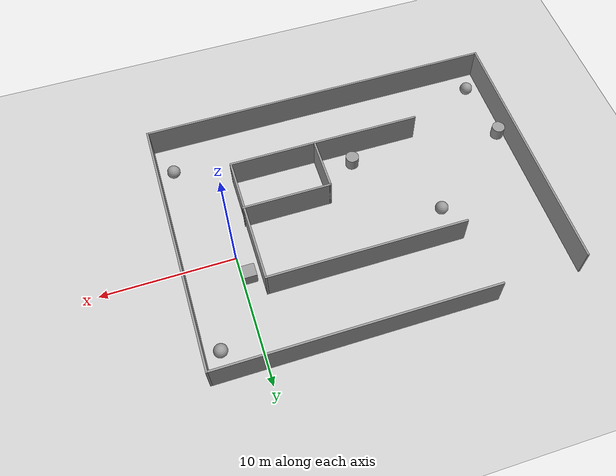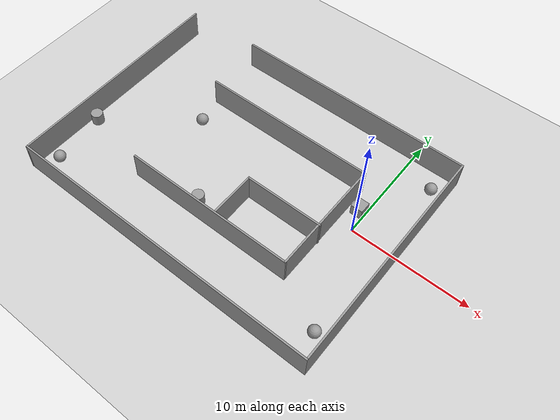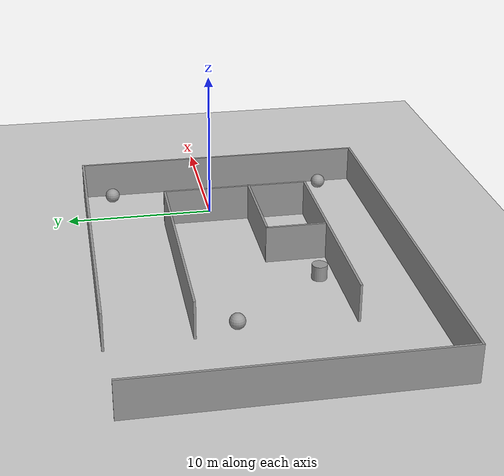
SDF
<sdf version="1.7">
 <world name="default">
  <light name="sun" type="directional">
   <pose>0 0 10 0 -0 0</pose>
   <diffuse>0.8 0.8 0.8 1</diffuse>
   <specular>0.2 0.2 0.2 1</specular>
   <attenuation>
    <range>1000</range>
    <constant>0.9</constant>
    <linear>0.01</linear>
    <quadratic>0.001</quadratic>
   </attenuation>
   <direction>-0.5 0.1 -0.9</direction>
   <spot><inner_angle>0</inner_angle><outer_angle>0</outer_angle><falloff>0</falloff></spot>
  </light>
  <model name="ground_plane">
   <static>1</static>
   <link name="link">
    <collision name="collision">
     <geometry><plane><normal>0 0 1</normal><size>100 100</size></plane></geometry>
     <surface>
      <contact><collide_bitmask>65535</collide_bitmask></contact>
      <friction><ode><mu>100</mu><mu2>50</mu2></ode></friction>
     </surface>
    </collision>
    <visual name="visual">
     <cast_shadows>0</cast_shadows>
     <geometry><plane><normal>0 0 1</normal><size>100 100</size></plane></geometry>
     <material>
      <script><uri>file://media/materials/scripts/gazebo.material</uri><name>Gazebo/Grey</name></script>
     </material>
    </visual>
   </link>
  </model>
  <gravity>0 0 -9.8</gravity>
  <magnetic_field>6e-06 2.3e-05 -4.2e-05</magnetic_field>
  <atmosphere type="adiabatic"/>
  <physics type="ode">
   <max_step_size>0.001</max_step_size>
   <real_time_factor>1</real_time_factor>
   <real_time_update_rate>1000</real_time_update_rate>
  </physics>
  <scene><ambient>0.4 0.4 0.4 1</ambient><background>0.7 0.7 0.7 1</background><shadows>1</shadows></scene>
  <audio><device>default</device></audio>
  <spherical_coordinates>
   <surface_model>EARTH_WGS84</surface_model>
   <latitude_deg>0</latitude_deg>
   <longitude_deg>0</longitude_deg>
   <elevation>0</elevation>
   <heading_deg>0</heading_deg>
  </spherical_coordinates>
  <model name="map">
   <pose>-9.63942 -1.25494 0 0 -0 0</pose>
   <link name="Wall_10">
    <collision name="Wall_10_Collision">
     <geometry><box><size>20.75 0.15 2.5</size></box></geometry>
     <pose>0 0 1.25 0 -0 0</pose>
    </collision>
    <visual name="Wall_10_Visual">
     <pose>0 0 1.25 0 -0 0</pose>
     <geometry><box><size>20.75 0.15 2.5</size></box></geometry>
     <material>
      <script><uri>file://media/materials/scripts/gazebo.material</uri><name>Gazebo/Grey</name></script>
      <ambient>1 1 1 1</ambient>
     </material>
     <meta><layer>0</layer></meta>
    </visual>
    <pose>3.25 9.925 0 0 -0 3.14159</pose>
   </link>
   <link name="Wall_12">
    <collision name="Wall_12_Collision">
     <geometry><box><size>15 0.15 2.5</size></box></geometry>
     <pose>0 0 1.25 0 -0 0</pose>
    </collision>
    <visual name="Wall_12_Visual">
     <pose>0 0 1.25 0 -0 0</pose>
     <geometry><box><size>15 0.15 2.5</size></box></geometry>
     <material>
      <script><uri>file://media/materials/scripts/gazebo.material</uri><name>Gazebo/Grey</name></script>
      <ambient>1 1 1 1</ambient>
     </material>
     <meta><layer>0</layer></meta>
    </visual>
    <pose>0.76054 4.60389 0 0 -0 0</pose>
   </link>
   <link name="Wall_13">
    <collision name="Wall_13_Collision">
     <geometry><box><size>10 0.15 2.5</size></box></geometry>
     <pose>0 0 1.25 0 -0 0</pose>
    </collision>
    <visual name="Wall_13_Visual">
     <pose>0 0 1.25 0 -0 0</pose>
     <geometry><box><size>10 0.15 2.5</size></box></geometry>
     <material>
      <script><uri>file://media/materials/scripts/gazebo.material</uri><name>Gazebo/Grey</name></script>
      <ambient>1 1 1 1</ambient>
     </material>
     <meta><layer>0</layer></meta>
    </visual>
    <pose>8.18554 -0.321107 0 0 -0 -1.5708</pose>
   </link>
   <link name="Wall_14">
    <collision name="Wall_14_Collision">
     <geometry><box><size>14.75 0.15 2.5</size></box></geometry>
     <pose>0 0 1.25 0 -0 0</pose>
    </collision>
    <visual name="Wall_14_Visual">
     <pose>0 0 1.25 0 -0 0</pose>
     <geometry><box><size>14.75 0.15 2.5</size></box></geometry>
     <material>
      <script><uri>file://media/materials/scripts/gazebo.material</uri><name>Gazebo/Grey</name></script>
      <ambient>1 1 1 1</ambient>
     </material>
     <meta><layer>0</layer></meta>
    </visual>
    <pose>0.88554 -5.24611 0 0 -0 3.14159</pose>
   </link>
   <link name="Wall_16">
    <collision name="Wall_16_Collision">
     <geometry><box><size>4 0.15 2.5</size></box></geometry>
     <pose>0 0 1.25 0 -0 0</pose>
    </collision>
    <visual name="Wall_16_Visual">
     <pose>0 0 1.25 0 -0 0</pose>
     <geometry><box><size>4 0.15 2.5</size></box></geometry>
     <material>
      <script><uri>file://media/materials/scripts/gazebo.material</uri><name>Gazebo/Grey</name></script>
      <ambient>1 1 1 1</ambient>
     </material>
     <meta><layer>0</layer></meta>
    </visual>
    <pose>1.66332 -3.19461 0 0 -0 1.5708</pose>
   </link>
   <link name="Wall_17">
    <collision name="Wall_17_Collision">
     <geometry><box><size>6.75 0.15 2.5</size></box></geometry>
     <pose>0 0 1.25 0 -0 0</pose>
    </collision>
    <visual name="Wall_17_Visual">
     <pose>0 0 1.25 0 -0 0</pose>
     <geometry><box><size>6.75 0.15 2.5</size></box></geometry>
     <material>
      <script><uri>file://media/materials/scripts/gazebo.material</uri><name>Gazebo/Grey</name></script>
      <ambient>1 1 1 1</ambient>
     </material>
     <meta><layer>0</layer></meta>
    </visual>
    <pose>4.96332 -1.26961 0 0 -0 0</pose>
   </link>
   <link name="Wall_7">
    <collision name="Wall_7_Collision">
     <geometry><box><size>19.75 0.15 2.5</size></box></geometry>
     <pose>0 0 1.25 0 -0 0</pose>
    </collision>
    <visual name="Wall_7_Visual">
     <pose>0 0 1.25 0 -0 0</pose>
     <geometry><box><size>19.75 0.15 2.5</size></box></geometry>
     <material>
      <script><uri>file://media/materials/scripts/gazebo.material</uri><name>Gazebo/Grey</name></script>
      <ambient>1 1 1 1</ambient>
     </material>
     <meta><layer>0</layer></meta>
    </visual>
    <pose>-13.55 -0.125 0 0 -0 -1.5708</pose>
   </link>
   <link name="Wall_8">
    <collision name="Wall_8_Collision">
     <geometry><box><size>27.25 0.15 2.5</size></box></geometry>
     <pose>0 0 1.25 0 -0 0</pose>
    </collision>
    <visual name="Wall_8_Visual">
     <pose>0 0 1.25 0 -0 0</pose>
     <geometry><box><size>27.25 0.15 2.5</size></box></geometry>
     <material>
      <script><uri>file://media/materials/scripts/gazebo.material</uri><name>Gazebo/Grey</name></script>
      <ambient>1 1 1 1</ambient>
     </material>
     <meta><layer>0</layer></meta>
    </visual>
    <pose>0 -9.925 0 0 -0 0</pose>
   </link>
   <link name="Wall_9">
    <collision name="Wall_9_Collision">
     <geometry><box><size>20 0.15 2.5</size></box></geometry>
     <pose>0 0 1.25 0 -0 0</pose>
    </collision>
    <visual name="Wall_9_Visual">
     <pose>0 0 1.25 0 -0 0</pose>
     <geometry><box><size>20 0.15 2.5</size></box></geometry>
     <material>
      <script><uri>file://media/materials/scripts/gazebo.material</uri><name>Gazebo/Grey</name></script>
      <ambient>1 1 1 1</ambient>
     </material>
     <meta><layer>0</layer></meta>
    </visual>
    <pose>13.55 0 0 0 -0 1.5708</pose>
   </link>
   <static>1</static>
  </model>
  <model name="unit_box">
   <pose>-0.544829 1.72367 0.499995 0 1e-05 0</pose>
   <link name="link">
    <inertial>
     <mass>1</mass>
     <inertia>
      <ixx>0.166667</ixx>
      <ixy>0</ixy>
      <ixz>0</ixz>
      <iyy>0.166667</iyy>
      <iyz>0</iyz>
      <izz>0.166667</izz>
     </inertia>
    </inertial>
    <collision name="collision"><geometry><box><size>1 1 1</size></box></geometry></collision>
    <visual name="visual">
     <geometry><box><size>1 1 1</size></box></geometry>
     <material>
      <script><name>Gazebo/Grey</name><uri>file://media/materials/scripts/gazebo.material</uri></script>
     </material>
    </visual>
   </link>
  </model>
  <model name="unit_sphere">
   <pose>-15.6559 0.741991 0.5 0 -0 0</pose>
   <link name="link">
    <inertial>
     <mass>1</mass>
     <inertia><ixx>0.1</ixx><ixy>0</ixy><ixz>0</ixz><iyy>0.1</iyy><iyz>0</iyz><izz>0.1</izz></inertia>
    </inertial>
    <collision name="collision"><geometry><sphere><radius>0.5</radius></sphere></geometry></collision>
    <visual name="visual">
     <geometry><sphere><radius>0.5</radius></sphere></geometry>
     <material>
      <script><name>Gazebo/Grey</name><uri>file://media/materials/scripts/gazebo.material</uri></script>
     </material>
    </visual>
   </link>
  </model>
  <model name="unit_sphere_0">
   <pose>2.74605 -8.54797 0.5 0 -0 0</pose>
   <link name="link">
    <inertial>
     <mass>1</mass>
     <inertia><ixx>0.1</ixx><ixy>0</ixy><ixz>0</ixz><iyy>0.1</iyy><iyz>0</iyz><izz>0.1</izz></inertia>
    </inertial>
    <collision name="collision"><geometry><sphere><radius>0.5</radius></sphere></geometry></collision>
    <visual name="visual">
     <geometry><sphere><radius>0.5</radius></sphere></geometry>
     <material>
      <script><name>Gazebo/Grey</name><uri>file://media/materials/scripts/gazebo.material</uri></script>
     </material>
    </visual>
   </link>
  </model>
  <model name="unit_sphere_1">
   <pose>2.74723 6.7203 0.5 0 -0 0</pose>
   <link name="link">
    <inertial>
     <mass>1</mass>
     <inertia><ixx>0.1</ixx><ixy>0</ixy><ixz>0</ixz><iyy>0.1</iyy><iyz>0</iyz><izz>0.1</izz></inertia>
    </inertial>
    <collision name="collision"><geometry><sphere><radius>0.5</radius></sphere></geometry></collision>
    <visual name="visual">
     <geometry><sphere><radius>0.5</radius></sphere></geometry>
     <material>
      <script><name>Gazebo/Grey</name><uri>file://media/materials/scripts/gazebo.material</uri></script>
     </material>
    </visual>
   </link>
  </model>
  <model name="unit_cylinder">
   <pose>-10.6622 -5.39307 0.499997 3e-06 4e-06 -0</pose>
   <link name="link">
    <inertial>
     <mass>1</mass>
     <inertia><ixx>0.145833</ixx><ixy>0</ixy><ixz>0</ixz><iyy>0.145833</iyy><iyz>0</iyz><izz>0.125</izz></inertia>
    </inertial>
    <collision name="collision">
     <geometry><cylinder><radius>0.5</radius><length>1</length></cylinder></geometry>
    </collision>
    <visual name="visual">
     <geometry><cylinder><radius>0.5</radius><length>1</length></cylinder></geometry>
     <material>
      <script><name>Gazebo/Grey</name><uri>file://media/materials/scripts/gazebo.material</uri></script>
     </material>
    </visual>
   </link>
  </model>
  <model name="unit_sphere_2">
   <pose>-21.9462 -9.42828 0.5 0 -0 0</pose>
   <link name="link">
    <inertial>
     <mass>1</mass>
     <inertia><ixx>0.1</ixx><ixy>0</ixy><ixz>0</ixz><iyy>0.1</iyy><iyz>0</iyz><izz>0.1</izz></inertia>
    </inertial>
    <collision name="collision"><geometry><sphere><radius>0.5</radius></sphere></geometry></collision>
    <visual name="visual">
     <geometry><sphere><radius>0.5</radius></sphere></geometry>
     <material>
      <script><name>Gazebo/Grey</name><uri>file://media/materials/scripts/gazebo.material</uri></script>
     </material>
    </visual>
   </link>
  </model>
  <model name="unit_cylinder_0">
   <pose>-22.6144 -4.62547 0.5 0 -0 0</pose>
   <link name="link">
    <inertial>
     <mass>1</mass>
     <inertia><ixx>0.145833</ixx><ixy>0</ixy><ixz>0</ixz><iyy>0.145833</iyy><iyz>0</iyz><izz>0.125</izz></inertia>
    </inertial>
    <collision name="collision">
     <geometry><cylinder><radius>0.5</radius><length>1</length></cylinder></geometry>
    </collision>
    <visual name="visual">
     <geometry><cylinder><radius>0.5</radius><length>1</length></cylinder></geometry>
     <material>
      <script><name>Gazebo/Grey</name><uri>file://media/materials/scripts/gazebo.material</uri></script>
     </material>
    </visual>
   </link>
  </model>
 </world>
</sdf>
